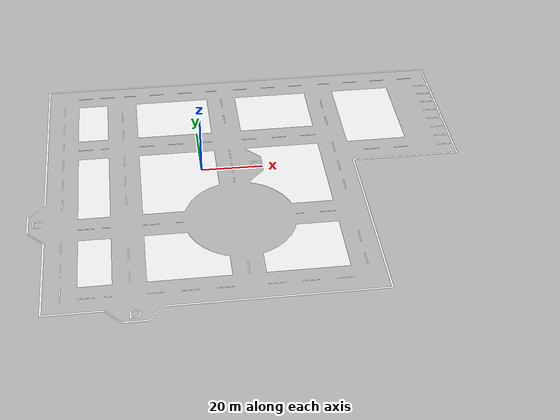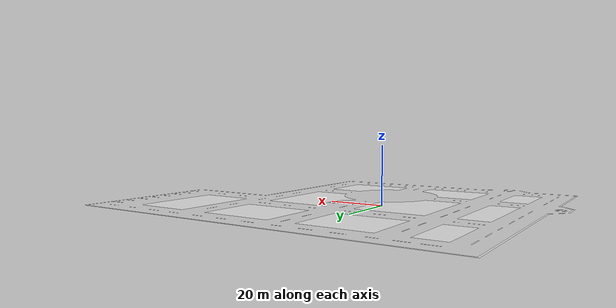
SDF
<?xml version="1.0"?>
<sdf version="1.6">
  <model name="beyazlar">
    <static>true</static>
    <link name="link">
      <visual name="visual">
        <geometry><mesh><scale>0.25 0.25 0.25</scale>
            <uri>model://beyazlar/meshes/beyazlar.dae</uri></mesh></geometry>
        <material><ambient>1 1 1 1</ambient><diffuse>1 1 1 1</diffuse></material>
      </visual>
      <collision name="collision">
        <geometry><mesh><scale>0.25 0.25 0.25</scale>
            <uri>model://beyazlar/meshes/beyazlar.dae</uri></mesh></geometry>
      </collision>
    </link>
  </model>
</sdf>
